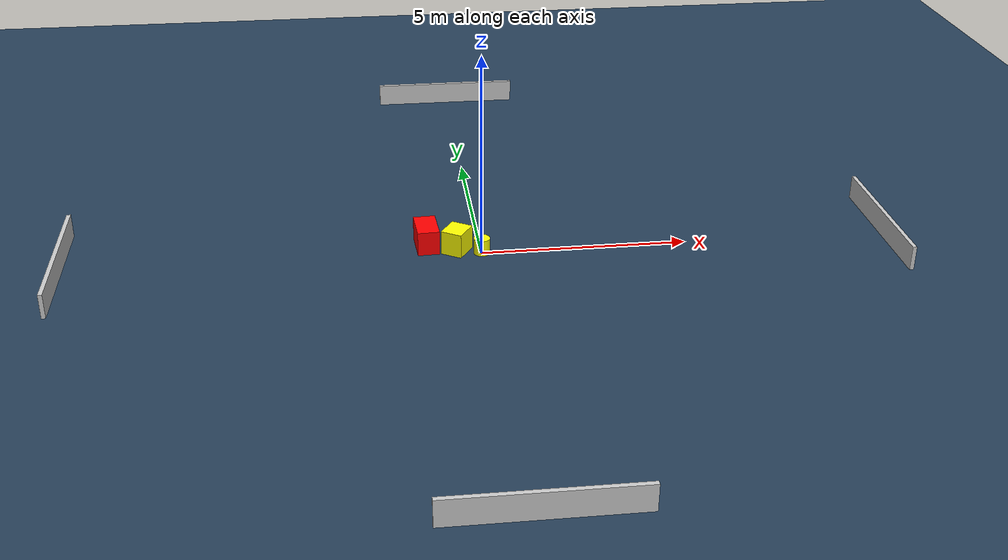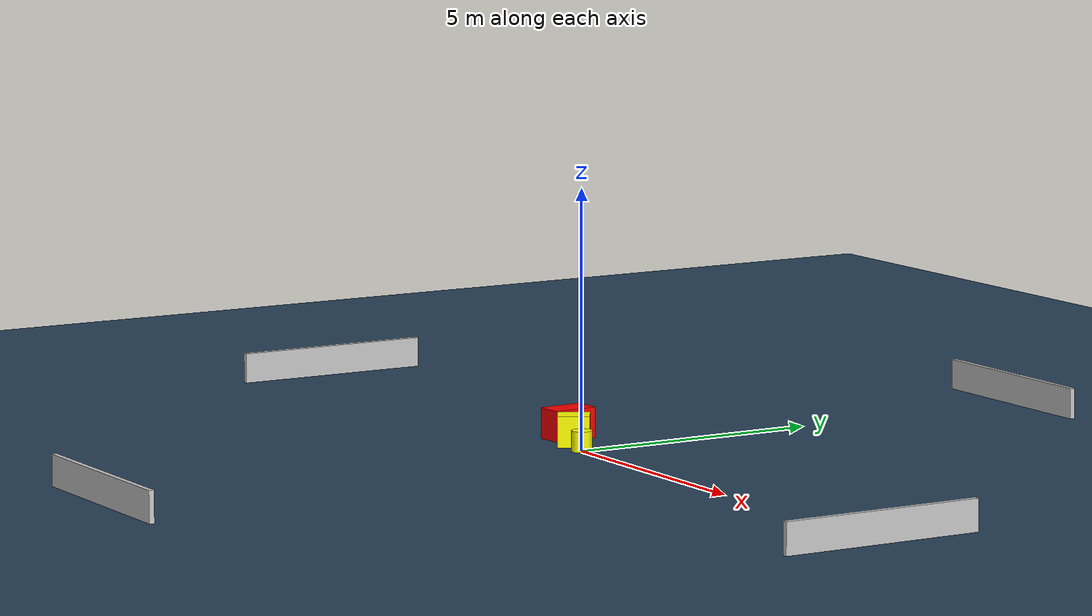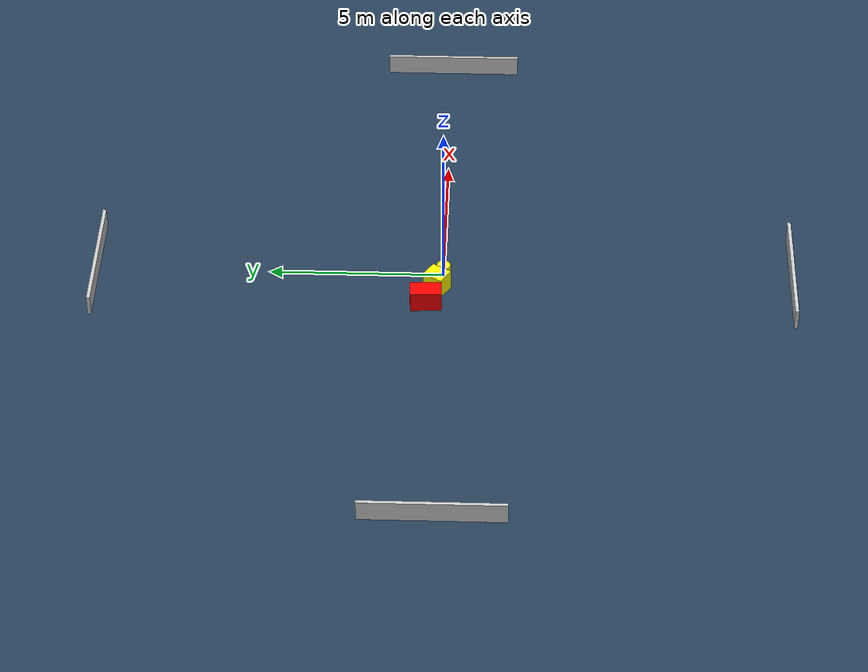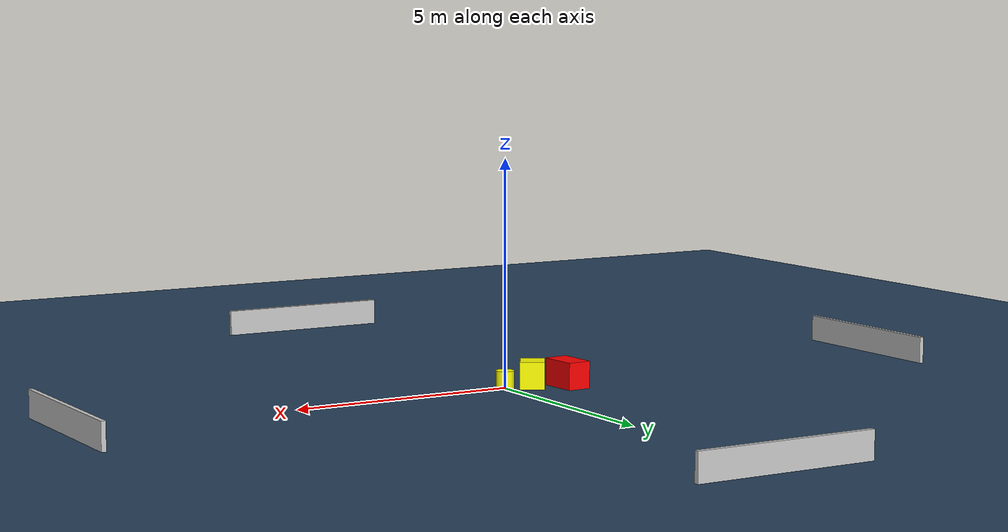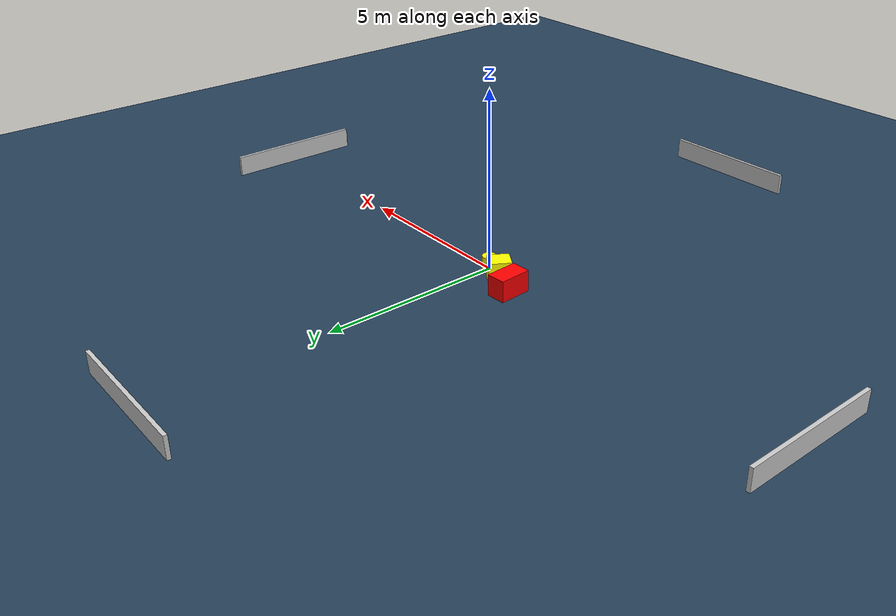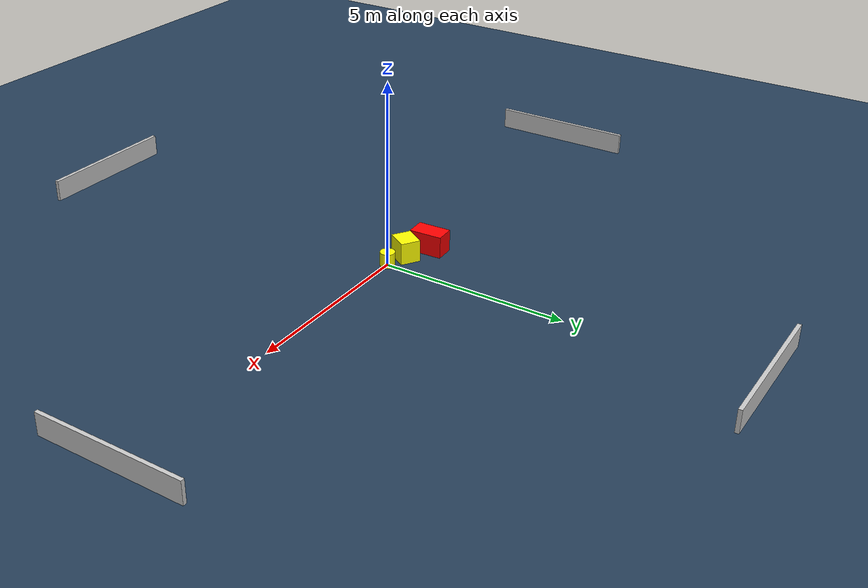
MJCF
<?xml version="1.0" ?>
<mujoco model="generated_environment">
  <option timestep="0.01" integrator="RK4" cone="elliptic"/>
  <default>
    <geom density="1"/>
  </default>
  <asset>
    <texture builtin="gradient" height="3072" name="skybox" rgb1="0.3 0.5 0.7" rgb2="0 0 0" type="skybox" width="512"/>
    <texture builtin="checker" height="300" name="groundplane" rgb1="0.2 0.3 0.4" rgb2="0.1 0.2 0.3" type="2d" width="300"/>
    <material name="groundplane" reflectance="0.2" texrepeat="5 5" texture="groundplane"/>
  </asset>
  <worldbody>
    <light dir="0 0 -1" directional="true" pos="0 0 1.5"/>
    <geom condim="3" friction="0.5 0.005 0.001" material="groundplane" name="floor" pos="0 0 0" size="0 0 0.05" type="plane"/>
    <body name="walls">
      <geom name="wall_1" condim="4" pos="-10.0 0.0 0.3" rgba="0.800000011920929 0.800000011920929 0.800000011920929 1.0" size="0.05 2.0 0.3" type="box"/>
      <geom name="wall_2" condim="4" pos="10.0 0.0 0.3" rgba="0.800000011920929 0.800000011920929 0.800000011920929 1.0" size="0.05 2.0 0.3" type="box"/>
      <geom name="wall_3" condim="4" pos="0.0 -10.0 0.3" rgba="0.800000011920929 0.800000011920929 0.800000011920929 1.0" size="2.0 0.05 0.3" type="box"/>
      <geom name="wall_4" condim="4" pos="0.0 10.0 0.3" rgba="0.800000011920929 0.800000011920929 0.800000011920929 1.0" size="2.0 0.05 0.3" type="box"/>
    </body>
    <body name="robot">
      <joint name="joint_x" type="slide" pos="0 0 0" axis="1 0 0"/>
      <joint name="joint_y" type="slide" pos="0 0 0" axis="0 1 0"/>
      <geom name="robot" type="cylinder" pos="0.0 0.0 0.2" size="0.2 0.2 0.0" mass="5.0" friction="1.0 0.005 0.0001" condim="4" rgba="1.0 1.0 0.0 1.0"/>
    </body>
    <body name="obstacle_1_movable">
      <geom name="obstacle_1_movable" condim="4" pos="-0.5910164042714778 0.17451952586174158 0.3" euler="0 0 57.69245637996967" friction="0.0 0.005 0.001" rgba="1.0 1.0 0.0 1.0" size="0.30651075221300084 0.2674756824548173 0.3" type="box" mass="0.1"/>
      <joint type="free"/>
    </body>
    <body name="obstacle_2_static">
      <geom name="obstacle_2_static" condim="4" pos="-1.3032449643523196 0.473735760259425 0.3" euler="0 0 183.04270770297632" friction="0.0 0.005 0.001" rgba="1.0 0.0 0.0 1.0" size="0.26795286513130534 0.4495287683852338 0.3" type="box"/>
    </body>
  </worldbody>
  <actuator>
    <motor name="actuator_x" joint="joint_x" gear="1" ctrlrange="-1 1"/>
    <motor name="actuator_y" joint="joint_y" gear="1" ctrlrange="-1 1"/>
  </actuator>
</mujoco>
